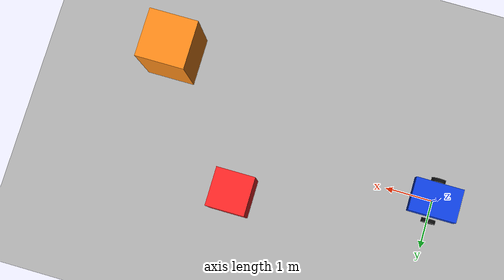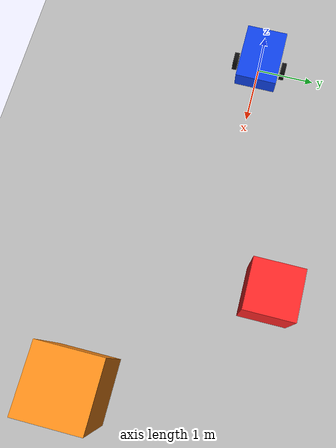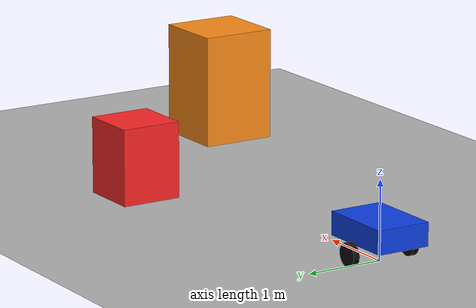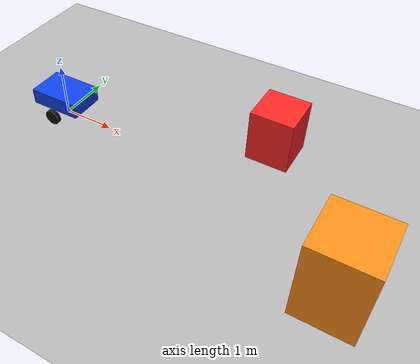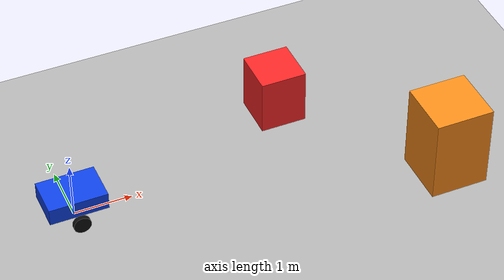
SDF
<?xml version="1.0"?>
<sdf version="1.9">

  <world name="navbot_sih_world">

    <plugin filename="gz-sim-physics-system"
            name="gz::sim::systems::Physics"/>

    <plugin filename="gz-sim-user-commands-system"
            name="gz::sim::systems::UserCommands"/>

    <plugin filename="gz-sim-scene-broadcaster-system"
            name="gz::sim::systems::SceneBroadcaster"/>

    <gravity>0 0 -9.81</gravity>

    <scene>
      <ambient>0.8 0.8 0.8 1</ambient>
      <background>0.85 0.85 0.85 1</background>
    </scene>

    <light type="directional" name="sun">
      <pose>0 0 10 0 0 0</pose>
      <direction>-0.5 -0.2 -1</direction>
      <diffuse>1 1 1 1</diffuse>
      <specular>0.2 0.2 0.2 1</specular>
    </light>

    <!-- Ground -->
    <model name="ground">
      <static>true</static>
      <link name="ground_link">
        <collision name="collision">
          <geometry>
            <plane>
              <normal>0 0 1</normal>
              <size>30 30</size>
            </plane>
          </geometry>
        </collision>

        <visual name="visual">
          <geometry>
            <plane>
              <normal>0 0 1</normal>
              <size>30 30</size>
            </plane>
          </geometry>
          <material>
            <diffuse>0.7 0.7 0.7 1</diffuse>
          </material>
        </visual>
      </link>
    </model>

    <!-- Obstacle 1 -->
    <model name="obstacle_1">
      <static>true</static>
      <pose>4 1 0.5 0 0 0</pose>
      <link name="link">
        <collision name="collision">
          <geometry>
            <box><size>0.8 0.8 1</size></box>
          </geometry>
        </collision>
        <visual name="visual">
          <geometry>
            <box><size>0.8 0.8 1</size></box>
          </geometry>
          <material>
            <diffuse>1 0.15 0.15 1</diffuse>
          </material>
        </visual>
      </link>
    </model>

    <!-- Obstacle 2 -->
    <model name="obstacle_2">
      <static>true</static>
      <pose>6 -1.5 0.75 0 0 0</pose>
      <link name="link">
        <collision name="collision">
          <geometry>
            <box><size>1 1 1.5</size></box>
          </geometry>
        </collision>
        <visual name="visual">
          <geometry>
            <box><size>1 1 1.5</size></box>
          </geometry>
          <material>
            <diffuse>1 0.55 0.1 1</diffuse>
          </material>
        </visual>
      </link>
    </model>

    <!-- NAVBOT -->
    <model name="navbot">

      <!-- Wheels touch the ground: wheel radius = 0.15 -->
      <pose>0 0 0.15 0 0 0</pose>

      <!-- Main body -->
      <link name="base_link">

        <pose>0 0 0.25 0 0 0</pose>

        <inertial>
          <mass>8.0</mass>
          <inertia>
            <ixx>0.5</ixx>
            <iyy>0.7</iyy>
            <izz>0.8</izz>
          </inertia>
        </inertial>

        <collision name="collision">
          <geometry>
            <box>
              <size>1.0 0.7 0.3</size>
            </box>
          </geometry>
        </collision>

        <visual name="visual">
          <geometry>
            <box>
              <size>1.0 0.7 0.3</size>
            </box>
          </geometry>
          <material>
            <diffuse>0.05 0.25 0.9 1</diffuse>
          </material>
        </visual>

        <!-- LiDAR foundation -->
        <sensor name="lidar" type="gpu_lidar">
          <pose>0.25 0 0.35 0 0 0</pose>
          <topic>/lidar</topic>
          <always_on>true</always_on>
          <update_rate>10</update_rate>
          <ray>
            <scan>
              <horizontal>
                <samples>360</samples>
                <resolution>1</resolution>
                <min_angle>-3.14159</min_angle>
                <max_angle>3.14159</max_angle>
              </horizontal>
            </scan>
            <range>
              <min>0.1</min>
              <max>10</max>
              <resolution>0.01</resolution>
            </range>
          </ray>
        </sensor>

      </link>

      <!-- LEFT WHEEL -->
      <link name="left_wheel">

        <pose>0 0.43 0 1.5708 0 0</pose>

        <inertial>
          <mass>1.0</mass>
          <inertia>
            <ixx>0.01</ixx>
            <iyy>0.01</iyy>
            <izz>0.01</izz>
          </inertia>
        </inertial>

        <collision name="collision">
          <geometry>
            <cylinder>
              <radius>0.15</radius>
              <length>0.08</length>
            </cylinder>
          </geometry>
        </collision>

        <visual name="visual">
          <geometry>
            <cylinder>
              <radius>0.15</radius>
              <length>0.08</length>
            </cylinder>
          </geometry>
          <material>
            <diffuse>0.05 0.05 0.05 1</diffuse>
          </material>
        </visual>

      </link>

      <!-- RIGHT WHEEL -->
      <link name="right_wheel">

        <pose>0 -0.43 0 1.5708 0 0</pose>

        <inertial>
          <mass>1.0</mass>
          <inertia>
            <ixx>0.01</ixx>
            <iyy>0.01</iyy>
            <izz>0.01</izz>
          </inertia>
        </inertial>

        <collision name="collision">
          <geometry>
            <cylinder>
              <radius>0.15</radius>
              <length>0.08</length>
            </cylinder>
          </geometry>
        </collision>

        <visual name="visual">
          <geometry>
            <cylinder>
              <radius>0.15</radius>
              <length>0.08</length>
            </cylinder>
          </geometry>
          <material>
            <diffuse>0.05 0.05 0.05 1</diffuse>
          </material>
        </visual>

      </link>

      <!-- LEFT JOINT -->
      <joint name="left_wheel_joint" type="revolute">
        <parent>base_link</parent>
        <child>left_wheel</child>
        <axis>
          <xyz>0 1 0</xyz>
          <limit>
            <lower>-1e16</lower>
            <upper>1e16</upper>
          </limit>
        </axis>
      </joint>

      <!-- RIGHT JOINT -->
      <joint name="right_wheel_joint" type="revolute">
        <parent>base_link</parent>
        <child>right_wheel</child>
        <axis>
          <xyz>0 1 0</xyz>
          <limit>
            <lower>-1e16</lower>
            <upper>1e16</upper>
          </limit>
        </axis>
      </joint>

      <!-- Differential drive -->
      <plugin filename="gz-sim-diff-drive-system"
              name="gz::sim::systems::DiffDrive">

        <left_joint>left_wheel_joint</left_joint>
        <right_joint>right_wheel_joint</right_joint>

        <wheel_separation>0.86</wheel_separation>
        <wheel_radius>0.15</wheel_radius>

        <topic>/cmd_vel</topic>
        <odom_topic>/odom</odom_topic>

        <odom_publish_frequency>30</odom_publish_frequency>

      </plugin>

    </model>

  </world>

</sdf>
